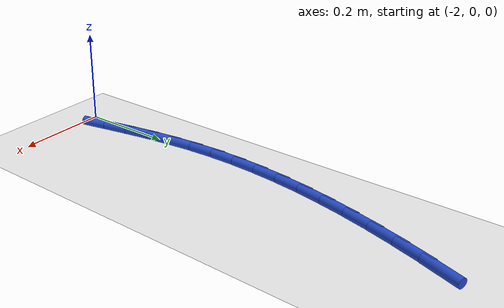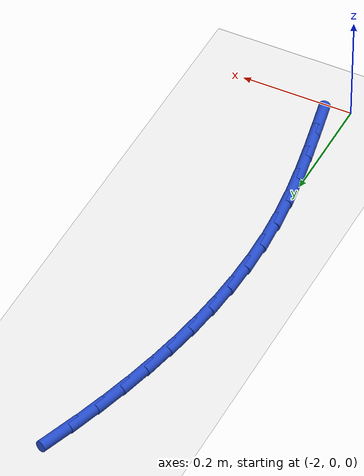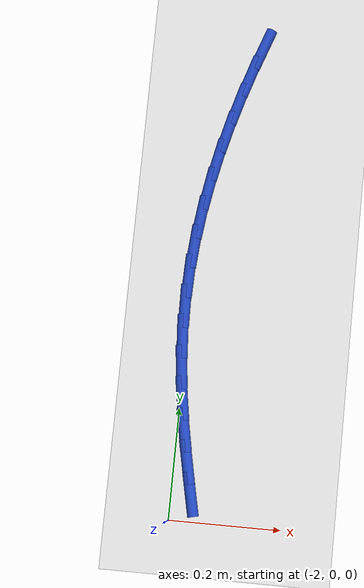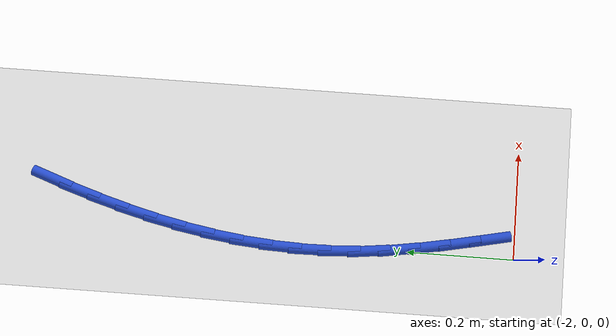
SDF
<sdf version="1.6">
 <world name="default">
  <model name="ground_plane">
   <static>1</static>
   <link name="link">
    <collision name="collision">
     <geometry><plane><normal>0 0 1</normal><size>100 100</size></plane></geometry>
     <surface><friction><ode><mu>100</mu><mu2>50</mu2></ode></friction></surface>
    </collision>
    <visual name="visual">
     <cast_shadows>0</cast_shadows>
     <geometry><plane><normal>0 0 1</normal><size>100 100</size></plane></geometry>
     <material>
      <script><uri>file://media/materials/scripts/gazebo.material</uri><name>Gazebo/WhiteGlow</name></script>
     </material>
    </visual>
   </link>
  </model>
  <model name="line">
   <link name="link_49">
    <pose>-1.9097693978019141 0.8751122490544272 0.01 0 1.57 1.2320322851193415</pose>
    <collision name="collision">
     <geometry><cylinder><radius>0.01</radius><length>0.08</length></cylinder></geometry>
    </collision>
    <visual name="visual">
     <material>
      <script><name>Gazebo/Blue</name><uri>file://media/materials/scripts/gazebo.material</uri></script>
     </material>
     <geometry><cylinder><radius>0.01</radius><length>0.08</length></cylinder></geometry>
    </visual>
   </link>
   <link name="link_50">
    <pose>-1.928836299197649 0.8209982411370038 0.01 0 1.57 1.2657579765588505</pose>
    <collision name="collision">
     <geometry><cylinder><radius>0.01</radius><length>0.08</length></cylinder></geometry>
    </collision>
    <visual name="visual">
     <material>
      <script><name>Gazebo/Blue</name><uri>file://media/materials/scripts/gazebo.material</uri></script>
     </material>
     <geometry><cylinder><radius>0.01</radius><length>0.08</length></cylinder></geometry>
    </visual>
   </link>
   <link name="link_51">
    <pose>-1.945971793353014 0.7665765887842638 0.01 0 1.57 1.2968376249890052</pose>
    <collision name="collision">
     <geometry><cylinder><radius>0.01</radius><length>0.08</length></cylinder></geometry>
    </collision>
    <visual name="visual">
     <material>
      <script><name>Gazebo/Blue</name><uri>file://media/materials/scripts/gazebo.material</uri></script>
     </material>
     <geometry><cylinder><radius>0.01</radius><length>0.08</length></cylinder></geometry>
    </visual>
   </link>
   <link name="link_52">
    <pose>-1.961268897287776 0.7121432911742266 0.01 0 1.57 1.330600155619738</pose>
    <collision name="collision">
     <geometry><cylinder><radius>0.01</radius><length>0.08</length></cylinder></geometry>
    </collision>
    <visual name="visual">
     <material>
      <script><name>Gazebo/Blue</name><uri>file://media/materials/scripts/gazebo.material</uri></script>
     </material>
     <geometry><cylinder><radius>0.01</radius><length>0.08</length></cylinder></geometry>
    </visual>
   </link>
   <link name="link_53">
    <pose>-1.9746085085311036 0.657679143801671 0.01 0 1.57 1.3671790110485855</pose>
    <collision name="collision">
     <geometry><cylinder><radius>0.01</radius><length>0.08</length></cylinder></geometry>
    </collision>
    <visual name="visual">
     <material>
      <script><name>Gazebo/Blue</name><uri>file://media/materials/scripts/gazebo.material</uri></script>
     </material>
     <geometry><cylinder><radius>0.01</radius><length>0.08</length></cylinder></geometry>
    </visual>
   </link>
   <link name="link_54">
    <pose>-1.9858661752278015 0.6031569931244901 0.01 0 1.57 1.4065377296392345</pose>
    <collision name="collision">
     <geometry><cylinder><radius>0.01</radius><length>0.08</length></cylinder></geometry>
    </collision>
    <visual name="visual">
     <material>
      <script><name>Gazebo/Blue</name><uri>file://media/materials/scripts/gazebo.material</uri></script>
     </material>
     <geometry><cylinder><radius>0.01</radius><length>0.08</length></cylinder></geometry>
    </visual>
   </link>
   <link name="link_55">
    <pose>-1.9949174455226732 0.5485496856005768 0.01 0 1.57 1.448592713193987</pose>
    <collision name="collision">
     <geometry><cylinder><radius>0.01</radius><length>0.08</length></cylinder></geometry>
    </collision>
    <visual name="visual">
     <material>
      <script><name>Gazebo/Blue</name><uri>file://media/materials/scripts/gazebo.material</uri></script>
     </material>
     <geometry><cylinder><radius>0.01</radius><length>0.08</length></cylinder></geometry>
    </visual>
   </link>
   <link name="link_56">
    <pose>-2.0016378675605226 0.4938300676878242 0.01 0 1.57 1.4932055396756758</pose>
    <collision name="collision">
     <geometry><cylinder><radius>0.01</radius><length>0.08</length></cylinder></geometry>
    </collision>
    <visual name="visual">
     <material>
      <script><name>Gazebo/Blue</name><uri>file://media/materials/scripts/gazebo.material</uri></script>
     </material>
     <geometry><cylinder><radius>0.01</radius><length>0.08</length></cylinder></geometry>
    </visual>
   </link>
   <link name="link_57">
    <pose>-2.0059029894861538 0.43897098584412525 0.01 0 1.57 1.5401771207148272</pose>
    <collision name="collision">
     <geometry><cylinder><radius>0.01</radius><length>0.08</length></cylinder></geometry>
    </collision>
    <visual name="visual">
     <material>
      <script><name>Gazebo/Blue</name><uri>file://media/materials/scripts/gazebo.material</uri></script>
     </material>
     <geometry><cylinder><radius>0.01</radius><length>0.08</length></cylinder></geometry>
    </visual>
   </link>
   <link name="link_58">
    <pose>-2.0075883594443695 0.38394528652737175 0.01 0 1.57 -1.5523477927997635</pose>
    <collision name="collision">
     <geometry><cylinder><radius>0.01</radius><length>0.08</length></cylinder></geometry>
    </collision>
    <visual name="visual">
     <material>
      <script><name>Gazebo/Blue</name><uri>file://media/materials/scripts/gazebo.material</uri></script>
     </material>
     <geometry><cylinder><radius>0.01</radius><length>0.08</length></cylinder></geometry>
    </visual>
   </link>
   <link name="link_59">
    <pose>-2.0065695255799745 0.32872581619545743 0.01 0 1.57 -1.5015087502926239</pose>
    <collision name="collision">
     <geometry><cylinder><radius>0.01</radius><length>0.08</length></cylinder></geometry>
    </collision>
    <visual name="visual">
     <material>
      <script><name>Gazebo/Blue</name><uri>file://media/materials/scripts/gazebo.material</uri></script>
     </material>
     <geometry><cylinder><radius>0.01</radius><length>0.08</length></cylinder></geometry>
    </visual>
   </link>
   <link name="link_60">
    <pose>-2.002722036037772 0.2732854213062753 0.01 0 1.57 -1.451505447130659</pose>
    <collision name="collision">
     <geometry><cylinder><radius>0.01</radius><length>0.08</length></cylinder></geometry>
    </collision>
    <visual name="visual">
     <material>
      <script><name>Gazebo/Blue</name><uri>file://media/materials/scripts/gazebo.material</uri></script>
     </material>
     <geometry><cylinder><radius>0.01</radius><length>0.08</length></cylinder></geometry>
    </visual>
   </link>
   <link name="link_61">
    <pose>-1.996048824716977 0.21761035792412406 0.01 0 1.57 -1.4114632879044466</pose>
    <collision name="collision">
     <geometry><cylinder><radius>0.01</radius><length>0.08</length></cylinder></geometry>
    </collision>
    <visual name="visual">
     <material>
      <script><name>Gazebo/Blue</name><uri>file://media/materials/scripts/gazebo.material</uri></script>
     </material>
     <geometry><cylinder><radius>0.01</radius><length>0.08</length></cylinder></geometry>
    </visual>
   </link>
   <link name="link_62">
    <pose>-1.9870709550911954 0.16174142442607645 0.01 0 1.57 -1.383237682956133</pose>
    <collision name="collision">
     <geometry><cylinder><radius>0.01</radius><length>0.08</length></cylinder></geometry>
    </collision>
    <visual name="visual">
     <material>
      <script><name>Gazebo/Blue</name><uri>file://media/materials/scripts/gazebo.material</uri></script>
     </material>
     <geometry><cylinder><radius>0.01</radius><length>0.08</length></cylinder></geometry>
    </visual>
   </link>
   <link name="link_63">
    <pose>-1.9764412057172727 0.10573328453413544 0.01 0 1.57 -1.3663771765430717</pose>
    <collision name="collision">
     <geometry><cylinder><radius>0.01</radius><length>0.08</length></cylinder></geometry>
    </collision>
    <visual name="visual">
     <material>
      <script><name>Gazebo/Blue</name><uri>file://media/materials/scripts/gazebo.material</uri></script>
     </material>
     <geometry><cylinder><radius>0.01</radius><length>0.08</length></cylinder></geometry>
    </visual>
   </link>
   <link name="link_64">
    <pose>-1.964812355174443 0.04964060197266068 0.01 0 1.57 -1.3605735199370823</pose>
    <collision name="collision">
     <geometry><cylinder><radius>0.01</radius><length>0.08</length></cylinder></geometry>
    </collision>
    <visual name="visual">
     <material>
      <script><name>Gazebo/Blue</name><uri>file://media/materials/scripts/gazebo.material</uri></script>
     </material>
     <geometry><cylinder><radius>0.01</radius><length>0.08</length></cylinder></geometry>
    </visual>
   </link>
  </model>
 </world>
</sdf>
